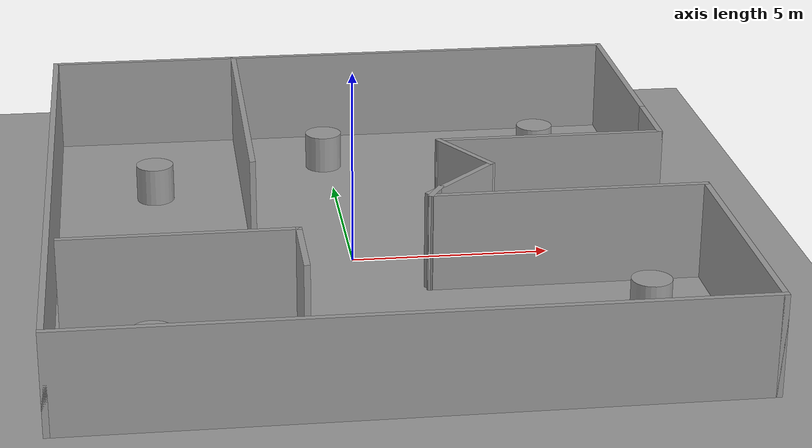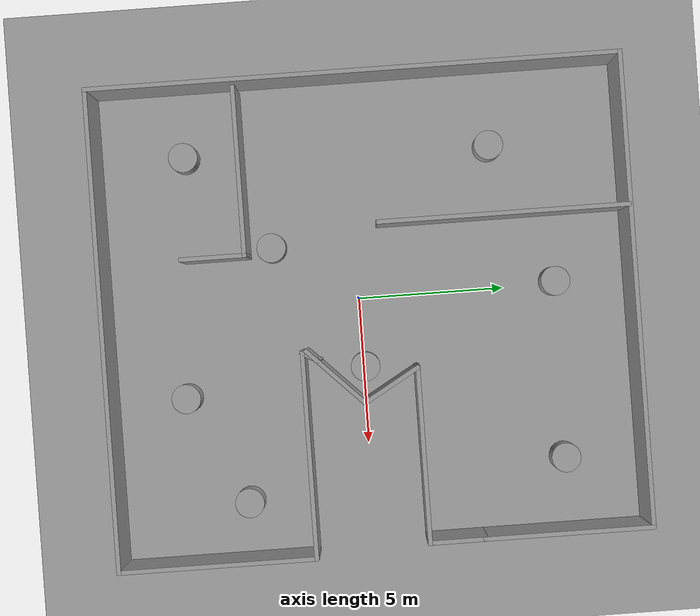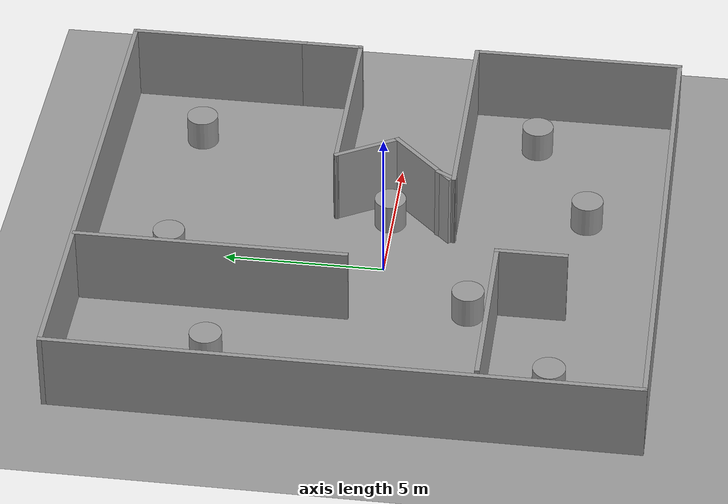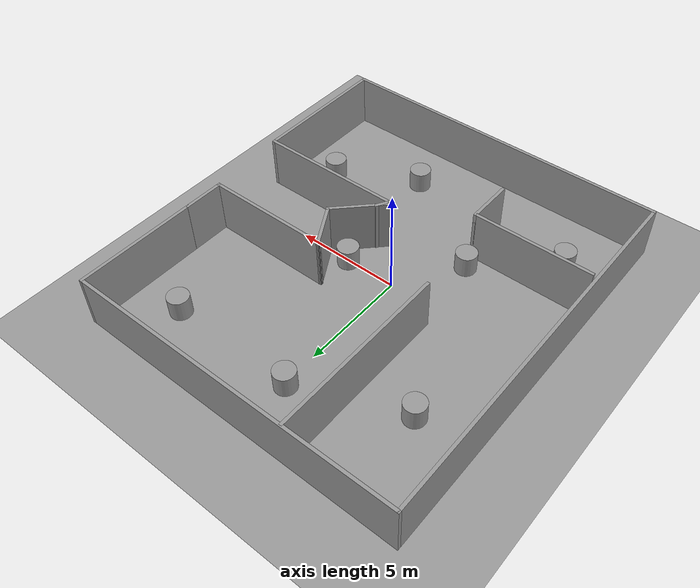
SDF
<sdf version="1.6">
 <world name="default">
  <plugin name="collision_map_creator" filename="libcollision_map_creator.so"/>
  <plugin name="welcome" filename="libwelcome_message.so"/>
  <light name="sun" type="directional">
   <pose>0 0 10 0 -0 0</pose>
   <diffuse>0.8 0.8 0.8 1</diffuse>
   <specular>0.2 0.2 0.2 1</specular>
   <attenuation>
    <range>1000</range>
    <constant>0.9</constant>
    <linear>0.01</linear>
    <quadratic>0.001</quadratic>
   </attenuation>
   <direction>0.5 0.1 -0.9</direction>
  </light>
  <scene><ambient>0.4 0.4 0.4 1</ambient><background>0.7 0.7 0.7 1</background><shadows>1</shadows></scene>
  <physics name="default_physics" default="0" type="ode">
   <max_step_size>0.01</max_step_size>
   <real_time_factor>1</real_time_factor>
   <real_time_update_rate>100</real_time_update_rate>
  </physics>
  <model name="ground_plane_0">
   <static>1</static>
   <link name="link">
    <collision name="collision">
     <geometry><plane><normal>0 0 1</normal><size>100 100</size></plane></geometry>
     <surface><friction><ode><mu>100</mu><mu2>50</mu2></ode></friction></surface>
    </collision>
    <visual name="visual">
     <cast_shadows>0</cast_shadows>
     <geometry><plane><normal>0 0 1</normal><size>100 100</size></plane></geometry>
     <material>
      <script><uri>file://media/materials/scripts/gazebo.material</uri><name>Gazebo/Grey</name></script>
     </material>
    </visual>
    <velocity_decay><linear>0</linear><angular>0</angular></velocity_decay>
   </link>
   <pose>0.497681 0 0 0 -0 0</pose>
  </model>
  <gravity>0 0 -9.8</gravity>
  <magnetic_field>6e-06 2.3e-05 -4.2e-05</magnetic_field>
  <atmosphere type="adiabatic"/>
  <spherical_coordinates>
   <surface_model>EARTH_WGS84</surface_model>
   <latitude_deg>0</latitude_deg>
   <longitude_deg>0</longitude_deg>
   <elevation>0</elevation>
   <heading_deg>0</heading_deg>
  </spherical_coordinates>
  <model name="office">
   <pose>0.50848 0.332131 0 0 -0 0</pose>
   <link name="Wall_1">
    <collision name="Wall_1_Collision">
     <geometry><box><size>2.75 0.15 2.5</size></box></geometry>
     <pose>0 0 1.25 0 -0 0</pose>
    </collision>
    <visual name="Wall_1_Visual">
     <pose>0 0 1.25 0 -0 0</pose>
     <geometry><box><size>2.75 0.15 2.5</size></box></geometry>
     <material>
      <script><uri>file://media/materials/scripts/gazebo.material</uri><name>Gazebo/Grey</name></script>
      <ambient>1 1 1 1</ambient>
     </material>
    </visual>
    <pose>2.08076 -1.26289 0 0 -0 0.785398</pose>
   </link>
   <link name="Wall_10">
    <collision name="Wall_10_Collision">
     <geometry><box><size>7 0.15 2.5</size></box></geometry>
     <pose>0 0 1.25 0 -0 0</pose>
    </collision>
    <visual name="Wall_10_Visual">
     <pose>0 0 1.25 0 -0 0</pose>
     <geometry><box><size>7 0.15 2.5</size></box></geometry>
     <material>
      <script><uri>file://media/materials/scripts/gazebo.material</uri><name>Gazebo/Grey</name></script>
      <ambient>1 1 1 1</ambient>
     </material>
    </visual>
    <pose>4.625 -2.325 0 0 -0 3.14159</pose>
   </link>
   <link name="Wall_11">
    <collision name="Wall_11_Collision">
     <geometry><box><size>0.75 0.15 2.5</size></box></geometry>
     <pose>0 0 1.25 0 -0 0</pose>
    </collision>
    <visual name="Wall_11_Visual">
     <pose>0 0 1.25 0 -0 0</pose>
     <geometry><box><size>0.75 0.15 2.5</size></box></geometry>
     <material>
      <script><uri>file://media/materials/scripts/gazebo.material</uri><name>Gazebo/Grey</name></script>
      <ambient>1 1 1 1</ambient>
     </material>
    </visual>
    <pose>1.35 -2.06519 0 0 -0 1.0472</pose>
   </link>
   <link name="Wall_13">
    <collision name="Wall_13_Collision">
     <geometry><box><size>8.5 0.15 2.5</size></box></geometry>
     <pose>0 0 1.25 0 -0 0</pose>
    </collision>
    <visual name="Wall_13_Visual">
     <pose>0 0 1.25 0 -0 0</pose>
     <geometry><box><size>8.5 0.15 2.5</size></box></geometry>
     <material>
      <script><uri>file://media/materials/scripts/gazebo.material</uri><name>Gazebo/Grey</name></script>
      <ambient>1 1 1 1</ambient>
     </material>
    </visual>
    <pose>-2.96935 4.69042 0 0 0 -1.5708</pose>
   </link>
   <link name="Wall_15">
    <collision name="Wall_15_Collision">
     <geometry><box><size>5.75 0.15 2.5</size></box></geometry>
     <pose>0 0 1.25 0 -0 0</pose>
    </collision>
    <visual name="Wall_15_Visual">
     <pose>0 0 1.25 0 -0 0</pose>
     <geometry><box><size>5.75 0.15 2.5</size></box></geometry>
     <material>
      <script><uri>file://media/materials/scripts/gazebo.material</uri><name>Gazebo/Grey</name></script>
      <ambient>1 1 1 1</ambient>
     </material>
    </visual>
    <pose>-4.98083 -4.01237 0 0 -0 0</pose>
   </link>
   <link name="Wall_16">
    <collision name="Wall_16_Collision">
     <geometry><box><size>2.25 0.15 2.5</size></box></geometry>
     <pose>0 0 1.25 0 -0 0</pose>
    </collision>
    <visual name="Wall_16_Visual">
     <pose>0 0 1.25 0 -0 0</pose>
     <geometry><box><size>2.25 0.15 2.5</size></box></geometry>
     <material>
      <script><uri>file://media/materials/scripts/gazebo.material</uri><name>Gazebo/Grey</name></script>
      <ambient>1 1 1 1</ambient>
     </material>
    </visual>
    <pose>-2.18083 -5.06237 0 0 0 -1.5708</pose>
   </link>
   <link name="Wall_2">
    <collision name="Wall_2_Collision">
     <geometry><box><size>2.25 0.15 2.5</size></box></geometry>
     <pose>0 0 1.25 0 -0 0</pose>
    </collision>
    <visual name="Wall_2_Visual">
     <pose>0 0 1.25 0 -0 0</pose>
     <geometry><box><size>2.25 0.15 2.5</size></box></geometry>
     <material>
      <script><uri>file://media/materials/scripts/gazebo.material</uri><name>Gazebo/Grey</name></script>
      <ambient>1 1 1 1</ambient>
     </material>
    </visual>
    <pose>2.475 0.565673 0 0 -0 2.0944</pose>
   </link>
   <link name="Wall_3">
    <collision name="Wall_3_Collision">
     <geometry><box><size>6 0.15 2.5</size></box></geometry>
     <pose>0 0 1.25 0 -0 0</pose>
    </collision>
    <visual name="Wall_3_Visual">
     <pose>0 0 1.25 0 -0 0</pose>
     <geometry><box><size>6 0.15 2.5</size></box></geometry>
     <material>
      <script><uri>file://media/materials/scripts/gazebo.material</uri><name>Gazebo/Grey</name></script>
      <ambient>1 1 1 1</ambient>
     </material>
    </visual>
    <pose>4.875 1.475 0 0 -0 0</pose>
   </link>
   <link name="Wall_4">
    <collision name="Wall_4_Collision">
     <geometry><box><size>2 0.15 2.5</size></box></geometry>
     <pose>0 0 1.25 0 -0 0</pose>
    </collision>
    <visual name="Wall_4_Visual">
     <pose>0 0 1.25 0 -0 0</pose>
     <geometry><box><size>2 0.15 2.5</size></box></geometry>
     <material>
      <script><uri>file://media/materials/scripts/gazebo.material</uri><name>Gazebo/Grey</name></script>
      <ambient>1 1 1 1</ambient>
     </material>
    </visual>
    <pose>7.8 2.4 0 0 -0 1.5708</pose>
   </link>
   <link name="Wall_5">
    <collision name="Wall_5_Collision">
     <geometry><box><size>5.75 0.15 2.5</size></box></geometry>
     <pose>0 0 1.25 0 -0 0</pose>
    </collision>
    <visual name="Wall_5_Visual">
     <pose>0 0 1.25 0 -0 0</pose>
     <geometry><box><size>5.75 0.15 2.5</size></box></geometry>
     <material>
      <script><uri>file://media/materials/scripts/gazebo.material</uri><name>Gazebo/Grey</name></script>
      <ambient>1 1 1 1</ambient>
     </material>
    </visual>
    <pose>7.8 6.125 0 0 -0 1.5708</pose>
   </link>
   <link name="Wall_6">
    <collision name="Wall_6_Collision">
     <geometry><box><size>16 0.15 2.5</size></box></geometry>
     <pose>0 0 1.25 0 -0 0</pose>
    </collision>
    <visual name="Wall_6_Visual">
     <pose>0 0 1.25 0 -0 0</pose>
     <geometry><box><size>16 0.15 2.5</size></box></geometry>
     <material>
      <script><uri>file://media/materials/scripts/gazebo.material</uri><name>Gazebo/Grey</name></script>
      <ambient>1 1 1 1</ambient>
     </material>
    </visual>
    <pose>-0.125 8.925 0 0 -0 3.14159</pose>
   </link>
   <link name="Wall_7">
    <collision name="Wall_7_Collision">
     <geometry><box><size>18 0.15 2.5</size></box></geometry>
     <pose>0 0 1.25 0 -0 0</pose>
    </collision>
    <visual name="Wall_7_Visual">
     <pose>0 0 1.25 0 -0 0</pose>
     <geometry><box><size>18 0.15 2.5</size></box></geometry>
     <material>
      <script><uri>file://media/materials/scripts/gazebo.material</uri><name>Gazebo/Grey</name></script>
      <ambient>1 1 1 1</ambient>
     </material>
    </visual>
    <pose>-8.05 0 0 0 0 -1.5708</pose>
   </link>
   <link name="Wall_8">
    <collision name="Wall_8_Collision">
     <geometry><box><size>16.25 0.15 2.5</size></box></geometry>
     <pose>0 0 1.25 0 -0 0</pose>
    </collision>
    <visual name="Wall_8_Visual">
     <pose>0 0 1.25 0 -0 0</pose>
     <geometry><box><size>16.25 0.15 2.5</size></box></geometry>
     <material>
      <script><uri>file://media/materials/scripts/gazebo.material</uri><name>Gazebo/Grey</name></script>
      <ambient>1 1 1 1</ambient>
     </material>
    </visual>
    <pose>0 -8.925 0 0 -0 0</pose>
   </link>
   <link name="Wall_9">
    <collision name="Wall_9_Collision">
     <geometry><box><size>6.75 0.15 2.5</size></box></geometry>
     <pose>0 0 1.25 0 -0 0</pose>
    </collision>
    <visual name="Wall_9_Visual">
     <pose>0 0 1.25 0 -0 0</pose>
     <geometry><box><size>6.75 0.15 2.5</size></box></geometry>
     <material>
      <script><uri>file://media/materials/scripts/gazebo.material</uri><name>Gazebo/Grey</name></script>
      <ambient>1 1 1 1</ambient>
     </material>
    </visual>
    <pose>8.05 -5.625 0 0 -0 1.5708</pose>
   </link>
   <static>1</static>
  </model>
  <model name="unit_cylinder_0">
   <pose>-0.10296 6.74835 0.499096 4.8e-05 4.8e-05 -1.6e-05</pose>
   <link name="link">
    <inertial>
     <mass>1</mass>
     <inertia><ixx>0.145833</ixx><ixy>0</ixy><ixz>0</ixz><iyy>0.145833</iyy><iyz>0</iyz><izz>0.125</izz></inertia>
    </inertial>
    <collision name="collision">
     <geometry><cylinder><radius>0.5</radius><length>1</length></cylinder></geometry>
    </collision>
    <visual name="visual">
     <geometry><cylinder><radius>0.5</radius><length>1</length></cylinder></geometry>
     <material>
      <script><name>Gazebo/Grey</name><uri>file://media/materials/scripts/gazebo.material</uri></script>
     </material>
    </visual>
   </link>
  </model>
  <model name="unit_cylinder_1_0">
   <pose>5.93837 6.69119 0.49912 0 0 -1.5e-05</pose>
   <link name="link">
    <inertial>
     <mass>1</mass>
     <inertia><ixx>0.145833</ixx><ixy>0</ixy><ixz>0</ixz><iyy>0.145833</iyy><iyz>0</iyz><izz>0.125</izz></inertia>
    </inertial>
    <collision name="collision">
     <geometry><cylinder><radius>0.5</radius><length>1</length></cylinder></geometry>
    </collision>
    <visual name="visual">
     <geometry><cylinder><radius>0.5</radius><length>1</length></cylinder></geometry>
     <material>
      <script><name>Gazebo/Grey</name><uri>file://media/materials/scripts/gazebo.material</uri></script>
     </material>
    </visual>
   </link>
  </model>
  <model name="unit_cylinder_1_1">
   <pose>6.72046 -4.19716 0.49912 0 0 -1.3e-05</pose>
   <link name="link">
    <inertial>
     <mass>1</mass>
     <inertia><ixx>0.145833</ixx><ixy>0</ixy><ixz>0</ixz><iyy>0.145833</iyy><iyz>0</iyz><izz>0.125</izz></inertia>
    </inertial>
    <collision name="collision">
     <geometry><cylinder><radius>0.5</radius><length>1</length></cylinder></geometry>
    </collision>
    <visual name="visual">
     <geometry><cylinder><radius>0.5</radius><length>1</length></cylinder></geometry>
     <material>
      <script><name>Gazebo/Grey</name><uri>file://media/materials/scripts/gazebo.material</uri></script>
     </material>
    </visual>
   </link>
  </model>
  <model name="unit_cylinder_1_2">
   <pose>3.02491 -6.10942 0.499789 0.000422 0.000422 -1.2e-05</pose>
   <link name="link">
    <inertial>
     <mass>1</mass>
     <inertia><ixx>0.145833</ixx><ixy>0</ixy><ixz>0</ixz><iyy>0.145833</iyy><iyz>0</iyz><izz>0.125</izz></inertia>
    </inertial>
    <collision name="collision">
     <geometry><cylinder><radius>0.5</radius><length>1</length></cylinder></geometry>
    </collision>
    <visual name="visual">
     <geometry><cylinder><radius>0.5</radius><length>1</length></cylinder></geometry>
     <material>
      <script><name>Gazebo/Grey</name><uri>file://media/materials/scripts/gazebo.material</uri></script>
     </material>
    </visual>
   </link>
  </model>
  <model name="unit_cylinder_1_3">
   <pose>-5.19592 -5.63898 0.499096 4.8e-05 4.8e-05 -1.2e-05</pose>
   <link name="link">
    <inertial>
     <mass>1</mass>
     <inertia><ixx>0.145833</ixx><ixy>0</ixy><ixz>0</ixz><iyy>0.145833</iyy><iyz>0</iyz><izz>0.125</izz></inertia>
    </inertial>
    <collision name="collision">
     <geometry><cylinder><radius>0.5</radius><length>1</length></cylinder></geometry>
    </collision>
    <visual name="visual">
     <geometry><cylinder><radius>0.5</radius><length>1</length></cylinder></geometry>
     <material>
      <script><name>Gazebo/Grey</name><uri>file://media/materials/scripts/gazebo.material</uri></script>
     </material>
    </visual>
   </link>
  </model>
  <model name="unit_cylinder_1_4">
   <pose>-4.88823 4.79466 0.49912 0 0 -1.2e-05</pose>
   <link name="link">
    <inertial>
     <mass>1</mass>
     <inertia><ixx>0.145833</ixx><ixy>0</ixy><ixz>0</ixz><iyy>0.145833</iyy><iyz>0</iyz><izz>0.125</izz></inertia>
    </inertial>
    <collision name="collision">
     <geometry><cylinder><radius>0.5</radius><length>1</length></cylinder></geometry>
    </collision>
    <visual name="visual">
     <geometry><cylinder><radius>0.5</radius><length>1</length></cylinder></geometry>
     <material>
      <script><name>Gazebo/Grey</name><uri>file://media/materials/scripts/gazebo.material</uri></script>
     </material>
    </visual>
   </link>
  </model>
  <model name="unit_cylinder_1">
   <pose>2.35214 0.073209 0.499824 -0.000249 -0.000249 -2e-06</pose>
   <link name="link">
    <inertial>
     <mass>1</mass>
     <inertia><ixx>0.145833</ixx><ixy>0</ixy><ixz>0</ixz><iyy>0.145833</iyy><iyz>0</iyz><izz>0.125</izz></inertia>
    </inertial>
    <collision name="collision">
     <geometry><cylinder><radius>0.5</radius><length>1</length></cylinder></geometry>
    </collision>
    <visual name="visual">
     <geometry><cylinder><radius>0.5</radius><length>1</length></cylinder></geometry>
     <material>
      <script><name>Gazebo/Grey</name><uri>file://media/materials/scripts/gazebo.material</uri></script>
     </material>
    </visual>
   </link>
  </model>
  <model name="unit_cylinder_2">
   <pose>-1.91096 -2.85046 0.499096 4.8e-05 4.8e-05 -1e-06</pose>
   <link name="link">
    <inertial>
     <mass>1</mass>
     <inertia><ixx>0.145833</ixx><ixy>0</ixy><ixz>0</ixz><iyy>0.145833</iyy><iyz>0</iyz><izz>0.125</izz></inertia>
    </inertial>
    <collision name="collision">
     <geometry><cylinder><radius>0.5</radius><length>1</length></cylinder></geometry>
    </collision>
    <visual name="visual">
     <geometry><cylinder><radius>0.5</radius><length>1</length></cylinder></geometry>
     <material>
      <script><name>Gazebo/Grey</name><uri>file://media/materials/scripts/gazebo.material</uri></script>
     </material>
    </visual>
   </link>
  </model>
 </world>
</sdf>
